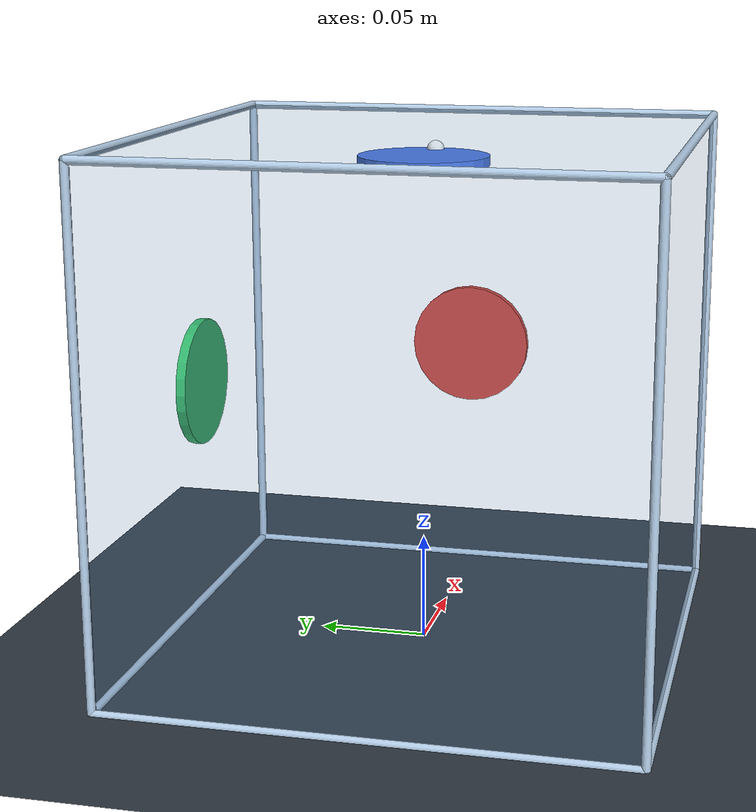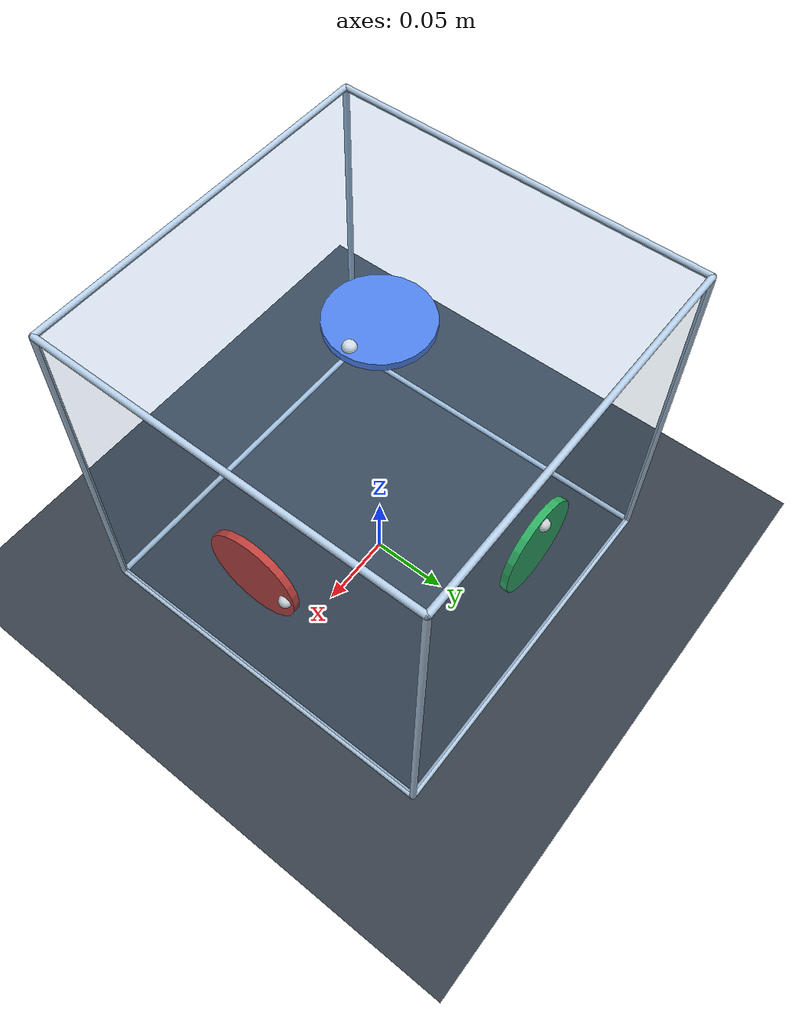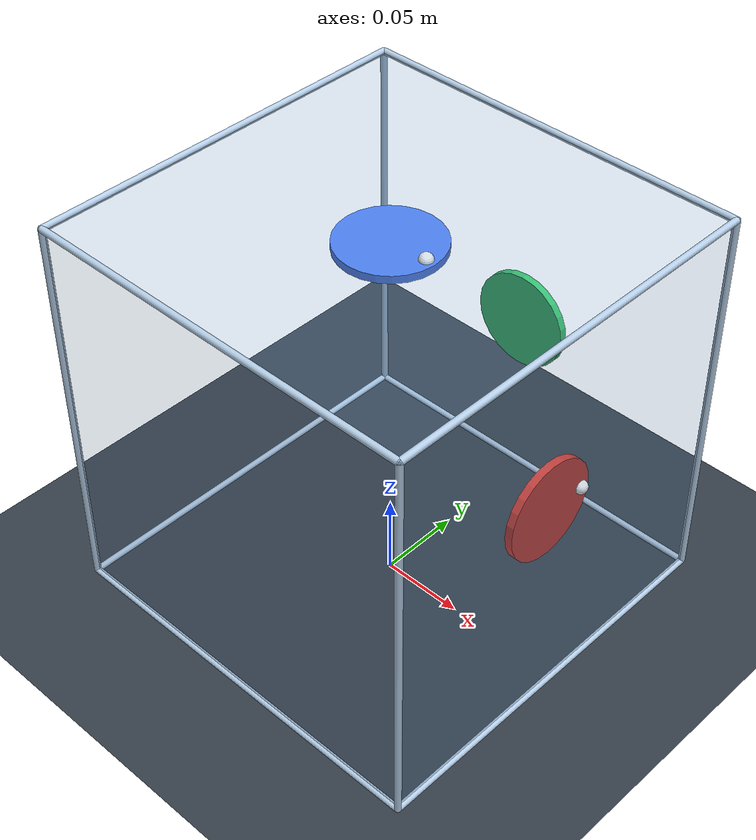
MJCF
<mujoco model="rev5-partial-solid-cad-proxy-v1-spin-brake-v2">
  <compiler angle="radian" inertiafromgeom="false" />
  <option timestep="0.0001" integrator="RK4" solver="Newton" iterations="50" tolerance="1e-10" gravity="0 0 -9.8066499999999994" cone="elliptic">
    <flag energy="enable" />
  </option>
  <visual>
    <global offwidth="960" offheight="720" />
  </visual>
  <asset>
    <texture name="grid" type="2d" builtin="checker" rgb1=".17 .20 .24" rgb2=".23 .27 .31" width="256" height="256" />
    <material name="floor" texture="grid" texrepeat="12 12" />
  </asset>
  <worldbody>
    <light pos="0 -1 3" dir="0 0 -1" diffuse=".8 .8 .8" />
    <geom name="floor" type="plane" size="3 3 .1" material="floor" contype="1" conaffinity="1" friction="0.59999999999999998 0 0" condim="3" solref="0.01 1" solimp="0.90000000000000002 0.94999999999999996 0.001" />
    <body name="cube" pos="0 0 0.12">
      <freejoint name="floating" />
      <inertial pos="0.0076932374816193064 0.007864991920938709 0.0052596649830427313" mass="2.7642777978399984" fullinertia="0.038620674023240459 0.038778326859818822 0.038120781820678407 0.0003895204475772889 0.00029437730260648817 0.00033499732231286815" />
      <geom name="cube_collision" type="box" size="0.12 0.12 0.12" rgba=".3 .5 .7 .16" friction="0.59999999999999998 0 0" condim="3" solref="0.01 1" solimp="0.90000000000000002 0.94999999999999996 0.001" />
      <geom type="capsule" fromto="-0.12 -0.12 -0.12 0.12 -0.12 -0.12" size=".002" rgba=".7 .8 .9 1" contype="0" conaffinity="0" />
      <geom type="capsule" fromto="-0.12 -0.12 0.12 0.12 -0.12 0.12" size=".002" rgba=".7 .8 .9 1" contype="0" conaffinity="0" />
      <geom type="capsule" fromto="-0.12 0.12 -0.12 0.12 0.12 -0.12" size=".002" rgba=".7 .8 .9 1" contype="0" conaffinity="0" />
      <geom type="capsule" fromto="-0.12 0.12 0.12 0.12 0.12 0.12" size=".002" rgba=".7 .8 .9 1" contype="0" conaffinity="0" />
      <geom type="capsule" fromto="-0.12 -0.12 -0.12 -0.12 0.12 -0.12" size=".002" rgba=".7 .8 .9 1" contype="0" conaffinity="0" />
      <geom type="capsule" fromto="-0.12 -0.12 0.12 -0.12 0.12 0.12" size=".002" rgba=".7 .8 .9 1" contype="0" conaffinity="0" />
      <geom type="capsule" fromto="0.12 -0.12 -0.12 0.12 0.12 -0.12" size=".002" rgba=".7 .8 .9 1" contype="0" conaffinity="0" />
      <geom type="capsule" fromto="0.12 -0.12 0.12 0.12 0.12 0.12" size=".002" rgba=".7 .8 .9 1" contype="0" conaffinity="0" />
      <geom type="capsule" fromto="-0.12 -0.12 -0.12 -0.12 -0.12 0.12" size=".002" rgba=".7 .8 .9 1" contype="0" conaffinity="0" />
      <geom type="capsule" fromto="-0.12 0.12 -0.12 -0.12 0.12 0.12" size=".002" rgba=".7 .8 .9 1" contype="0" conaffinity="0" />
      <geom type="capsule" fromto="0.12 -0.12 -0.12 0.12 -0.12 0.12" size=".002" rgba=".7 .8 .9 1" contype="0" conaffinity="0" />
      <geom type="capsule" fromto="0.12 0.12 -0.12 0.12 0.12 0.12" size=".002" rgba=".7 .8 .9 1" contype="0" conaffinity="0" />
      <body name="wheel_x" pos="0.10875 0 0">
        <inertial pos="0 0 0" mass="0.1" fullinertia="4.5000000000000003e-05 2.2668750000000002e-05 2.2668750000000002e-05 0 0 0" />
        <joint name="wheel_x" type="hinge" axis="1 0 0" damping="0" armature="0" frictionloss="0" solreffriction="0.00050000000000000001 1" solimpfriction="0.98999999999999999 0.98999999999999999 0.001 0.5 2" />
        <geom name="wheel_x_visual" type="cylinder" size="0.029999999999999999 0.0022499999999999998" quat="0.70710678118654757 0 0.70710678118654757 0" rgba=".9 .25 .2 1" contype="0" conaffinity="0" />
        <geom type="sphere" size=".004" pos="0.0022499999999999998 0.024 0" rgba="1 1 1 1" contype="0" conaffinity="0" />
      </body>
      <body name="wheel_y" pos="0 0.10875 0">
        <inertial pos="0 0 0" mass="0.1" fullinertia="2.2668750000000002e-05 4.5000000000000003e-05 2.2668750000000002e-05 0 0 0" />
        <joint name="wheel_y" type="hinge" axis="0 1 0" damping="0" armature="0" frictionloss="0" solreffriction="0.00050000000000000001 1" solimpfriction="0.98999999999999999 0.98999999999999999 0.001 0.5 2" />
        <geom name="wheel_y_visual" type="cylinder" size="0.029999999999999999 0.0022499999999999998" quat="0.70710678118654757 -0.70710678118654757 0 0" rgba=".2 .8 .4 1" contype="0" conaffinity="0" />
        <geom type="sphere" size=".004" pos="0 0.0022499999999999998 0.024" rgba="1 1 1 1" contype="0" conaffinity="0" />
      </body>
      <body name="wheel_z" pos="0 0 0.10875">
        <inertial pos="0 0 0" mass="0.1" fullinertia="2.2668750000000002e-05 2.2668750000000002e-05 4.5000000000000003e-05 0 0 0" />
        <joint name="wheel_z" type="hinge" axis="0 0 1" damping="0" armature="0" frictionloss="0" solreffriction="0.00050000000000000001 1" solimpfriction="0.98999999999999999 0.98999999999999999 0.001 0.5 2" />
        <geom name="wheel_z_visual" type="cylinder" size="0.029999999999999999 0.0022499999999999998" quat="1 0 0 0" rgba=".3 .5 1 1" contype="0" conaffinity="0" />
        <geom type="sphere" size=".004" pos="0.024 0 0.0022499999999999998" rgba="1 1 1 1" contype="0" conaffinity="0" />
      </body>
    </body>
  </worldbody>
  <actuator>
    <motor name="wheel_x" joint="wheel_x" gear="1" ctrllimited="true" ctrlrange="-0.02 0.02" />
    <motor name="wheel_y" joint="wheel_y" gear="1" ctrllimited="true" ctrlrange="-0.02 0.02" />
    <motor name="wheel_z" joint="wheel_z" gear="1" ctrllimited="true" ctrlrange="-0.02 0.02" />
  </actuator>
  <sensor>
    <subtreeangmom name="angular_momentum_world" body="cube" />
    <subtreelinvel name="com_velocity_world" body="cube" />
  </sensor>
</mujoco>
